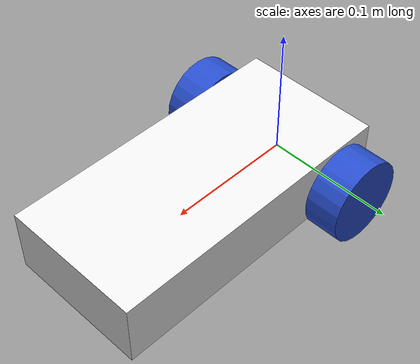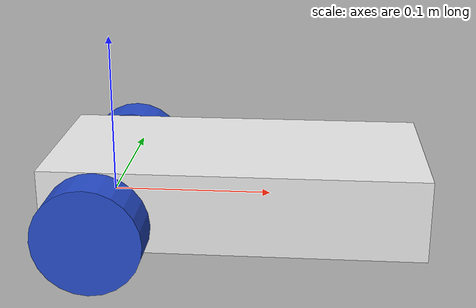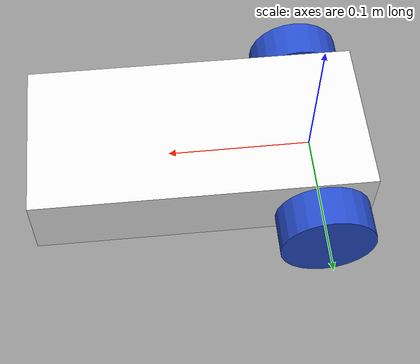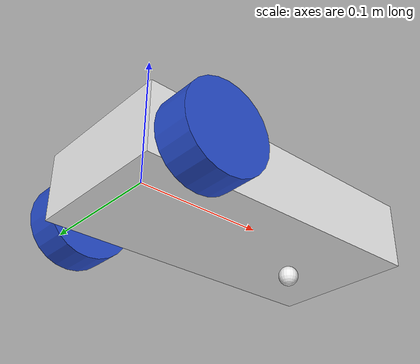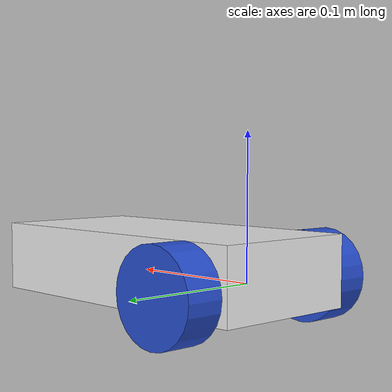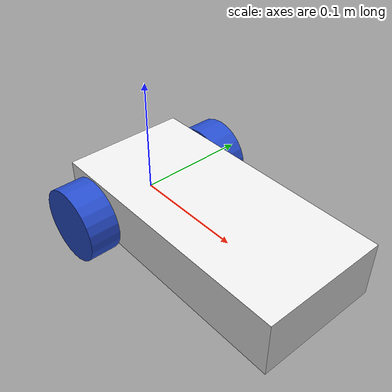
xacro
<?xml version="1.0"?>
<robot xmlns:xacro="http://www.ros.org/wiki/xacro">

    <xacro:include filename="material.xacro"/>
    <xacro:include filename="inertial_macros.xacro"/>

    <link name="base_link">
    </link>

    <joint name="chassis_joint" type="fixed">
        <parent link="base_link"/>
        <child link="chassis"/>
        <origin xyz="0.0 0.0 0.0" rpy="0.0 0.0 0.0"/>

    </joint>

    <link name="chassis">
        <visual>
            <origin xyz="0.08 0 0.007"/>
            <geometry>
                <box size="0.23 0.11 0.05"/>
            </geometry>
            <material name="white"/>
        </visual>
        <collision>
            <origin xyz="0.08 0 0.007"/>
            <geometry>
                <box size="0.23 0.11 0.05"/>
            </geometry>
        </collision>
        <xacro:inertial_box mass="2" x="0.23" y="0.11" z="0.05">
            <origin xyz="0.08 0 0.007" rpy="0 0 0"/>
        </xacro:inertial_box>
    </link>

    <gazebo reference='chassis'>
        <material>
            Gazebo/white
        </material>
    </gazebo>

    <joint name="left_wheel_joint" type="continuous">
        <parent link="base_link"/>
        <child link="left_wheel"/>
        <origin xyz="0 0.07 0" rpy="-${pi/2} 0 0" />
        <axis xyz="0 0 1"/>
    </joint>

    <link name="left_wheel">
        <visual>
            <geometry>
                <cylinder radius="0.0325" length="0.027"/>
            </geometry>
            <material name="blue"/>
        </visual>
        <collision>
            <geometry>
                <cylinder radius="0.0325" length="0.027"/>
            </geometry>
        </collision>
        <xacro:inertial_cylinder mass="0.1" length="0.027" radius="0.0325">
            <origin xyz="0 0 0" rpy="0 0 0"/>
        </xacro:inertial_cylinder>
    </link>

    <gazebo reference='left_wheel'>
        <material>
            Gazebo/Blue
        </material>
    </gazebo>

    <joint name="right_wheel_joint" type="continuous">
        <parent link="base_link"/>
        <child link="right_wheel"/>
        <origin xyz="0 -0.07 0" rpy="${pi/2} 0 0" />
        <axis xyz="0 0 -1"/>
    </joint>

    <link name="right_wheel">
        <visual>
            <geometry>
                <cylinder radius="0.0325" length="0.027"/>
            </geometry>
            <material name="blue"/>
        </visual>
        <collision>
            <geometry>
                <cylinder radius="0.0325" length="0.027"/>
            </geometry>
        </collision>
        <xacro:inertial_cylinder mass="0.1" length="0.027" radius="0.0325">
            <origin xyz="0 0 0" rpy="0 0 0"/>
        </xacro:inertial_cylinder>
    </link>

    <gazebo reference='right_wheel'>
        <material>
            Gazebo/Blue
        </material>
    </gazebo>

    <joint name="caster_wheel_joint" type="fixed">
        <parent link="chassis"/>
        <child link="caster_wheel"/>
        <origin xyz="0.135 0 -0.0255"/>
    </joint>

    <link name="caster_wheel">
        <visual>
            <geometry>
                <sphere radius="0.00725"/>
            </geometry>
            <material name="white"/>
        </visual>
        <collision>
            <geometry>
                <sphere radius="0.00725"/>
            </geometry>
        </collision>
        <xacro:inertial_sphere mass="0.1" radius="0.00725">
            <origin xyz="0 0 0" rpy="0 0 0"/>
        </xacro:inertial_sphere>
    </link>

    <gazebo reference='caster_wheel'>
        <material>
            Gazebo/white
        </material>
        <mu1 value="0.0001"/>
        <mu2 value="0.0001"/>
    </gazebo>

</robot>
